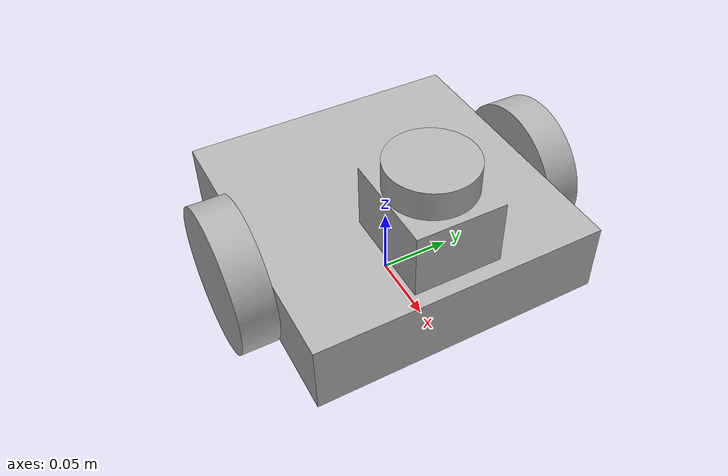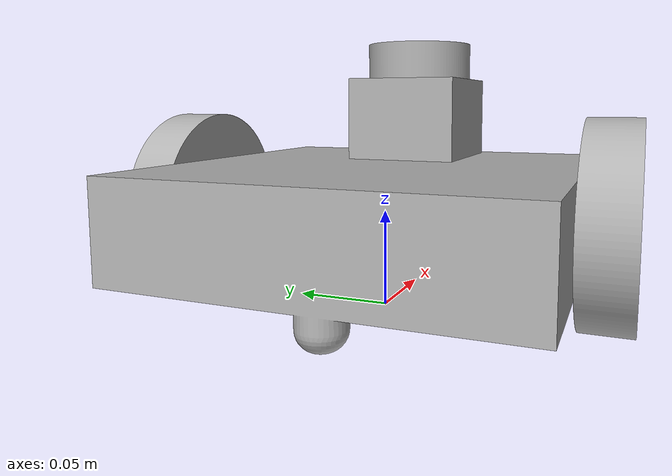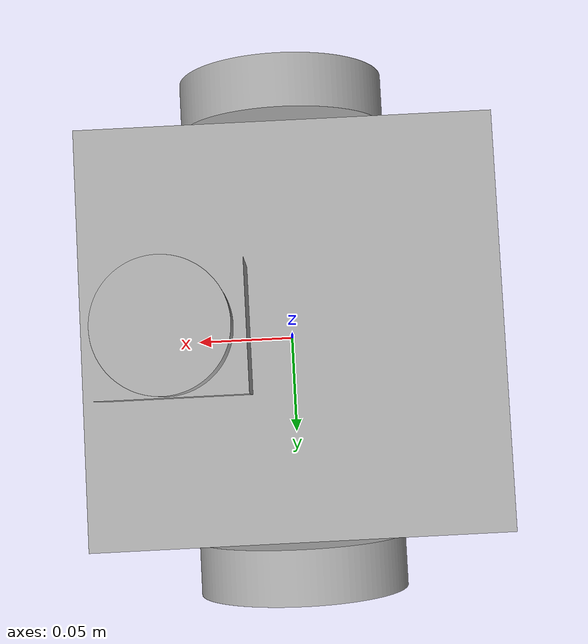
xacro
<?xml version="1.0" ?>
<robot name="Rosbot" xmlns:xacro="http://www.ros.org/wiki/xacro">

<xacro:include filename="$(find Rosbot_description)/urdf/materials.xacro" />
<xacro:include filename="$(find Rosbot_description)/urdf/Rosbot.ros2control" />
<xacro:include filename="$(find Rosbot_description)/urdf/Rosbot.gazebo" />
<link name="base_link">
  <inertial>
    <origin xyz="0.004711972385011227 1.4215078973805006e-06 0.05375741183973183" rpy="0 0 0"/>
    <mass value="2.34056579648116"/>
    <inertia ixx="0.008048" iyy="0.008737" izz="0.014943" ixy="-0.0" iyz="0.0" ixz="-0.000482"/>
  </inertial>
  <visual>
    <origin xyz="0 0 0" rpy="0 0 0"/>
    <geometry>
      <mesh filename="file://$(find Rosbot_description)/meshes/base_link.stl" scale="0.001 0.001 0.001"/>
    </geometry>
    <material name="silver"/>
  </visual>
  <collision>
    <origin xyz="0 0 0" rpy="0 0 0"/>
    <geometry>
      <mesh filename="file://$(find Rosbot_description)/meshes/base_link.stl" scale="0.001 0.001 0.001"/>
    </geometry>
  </collision>
</link>

<link name="left_wheel_1">
  <inertial>
    <origin xyz="6.789013795582832e-16 -0.012499999999999997 -1.3877787807814457e-15" rpy="0 0 0"/>
    <mass value="0.1826050729899067"/>
    <inertia ixx="0.000124" iyy="0.000228" izz="0.000124" ixy="0.0" iyz="0.0" ixz="0.0"/>
  </inertial>
  <visual>
    <origin xyz="-0.0 0.1 -0.05" rpy="0 0 0"/>
    <geometry>
      <mesh filename="file://$(find Rosbot_description)/meshes/left_wheel_1.stl" scale="0.001 0.001 0.001"/>
    </geometry>
    <material name="silver"/>
  </visual>
  <collision>
    <origin xyz="-0.0 0.1 -0.05" rpy="0 0 0"/>
    <geometry>
      <mesh filename="file://$(find Rosbot_description)/meshes/left_wheel_1.stl" scale="0.001 0.001 0.001"/>
    </geometry>
  </collision>
</link>

<link name="right_wheel_1">
  <inertial>
    <origin xyz="-1.865174681370263e-16 0.012499999999999997 -2.1510571102112408e-16" rpy="0 0 0"/>
    <mass value="0.1826050729899067"/>
    <inertia ixx="0.000124" iyy="0.000228" izz="0.000124" ixy="-0.0" iyz="0.0" ixz="-0.0"/>
  </inertial>
  <visual>
    <origin xyz="-0.0 -0.1 -0.05" rpy="0 0 0"/>
    <geometry>
      <mesh filename="file://$(find Rosbot_description)/meshes/right_wheel_1.stl" scale="0.001 0.001 0.001"/>
    </geometry>
    <material name="silver"/>
  </visual>
  <collision>
    <origin xyz="-0.0 -0.1 -0.05" rpy="0 0 0"/>
    <geometry>
      <mesh filename="file://$(find Rosbot_description)/meshes/right_wheel_1.stl" scale="0.001 0.001 0.001"/>
    </geometry>
  </collision>
</link>

<link name="lidar_1">
  <inertial>
    <origin xyz="0.0 0.0 0.009999999999999981" rpy="0 0 0"/>
    <mass value="0.0754575997873079"/>
    <inertia ixx="1.9e-05" iyy="1.9e-05" izz="3.3e-05" ixy="0.0" iyz="0.0" ixz="0.0"/>
  </inertial>
  <visual>
    <origin xyz="-0.055 0.0 -0.12" rpy="0 0 0"/>
    <geometry>
      <mesh filename="file://$(find Rosbot_description)/meshes/lidar_1.stl" scale="0.001 0.001 0.001"/>
    </geometry>
    <material name="silver"/>
  </visual>
  <collision>
    <origin xyz="-0.055 0.0 -0.12" rpy="0 0 0"/>
    <geometry>
      <mesh filename="file://$(find Rosbot_description)/meshes/lidar_1.stl" scale="0.001 0.001 0.001"/>
    </geometry>
  </collision>
</link>

<joint name="left_wheel_joint" type="continuous">
  <origin xyz="0.0 -0.1 0.05" rpy="0 0 0"/>
  <parent link="base_link"/>
  <child link="left_wheel_1"/>
  <axis xyz="0.0 1.0 0.0"/>
</joint>

<joint name="right_wheel_joint" type="continuous">
  <origin xyz="0.0 0.1 0.05" rpy="0 0 0"/>
  <parent link="base_link"/>
  <child link="right_wheel_1"/>
  <axis xyz="0.0 1.0 0.0"/>
</joint>

<joint name="lidar_joint" type="fixed">
  <origin xyz="0.055 0.0 0.12" rpy="0 0 0"/>
  <parent link="base_link"/>
  <child link="lidar_1"/>
</joint>

</robot>

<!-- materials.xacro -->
<robot name="Rosbot" xmlns:xacro="http://www.ros.org/wiki/xacro" >

<material name="silver">
  <color rgba="0.700 0.700 0.700 1.000"/>
</material>

</robot>

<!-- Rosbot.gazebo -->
<robot name="rosbot" xmlns:xacro="http://www.ros.org/wiki/xacro" >

<xacro:property name="body_color" value="Gazebo/Silver" />

<gazebo reference="base_link">
  <material>${body_color}</material>
  <mu1>1500</mu1>
  <mu2>1500</mu2>
  <self_collide>true</self_collide>
  <gravity>true</gravity>
</gazebo>

<gazebo reference="right_wheel_1">
  <material>${body_color}</material>
  <mu1>1500</mu1>
  <mu2>1500</mu2>
  <self_collide>true</self_collide>
</gazebo>

<gazebo reference="left_wheel_1">
  <material>${body_color}</material>
  <mu1>1500</mu1>
  <mu2>1500</mu2>
  <self_collide>true</self_collide>
</gazebo>

<gazebo reference="lidar_1">
  <material>${body_color}</material>
  <mu1>0.2</mu1>
  <mu2>0.2</mu2>
  <self_collide>true</self_collide>
</gazebo>

  <gazebo>

        <plugin filename="gz-sim-sensors-system" name="gz::sim::systems::Sensors">
            <render_engine>ogre2</render_engine>
        </plugin>

        <plugin filename="gz-sim-joint-state-publisher-system" name="gz::sim::systems::JointStatePublisher">
        <topic>/joint_states</topic>
        </plugin>

      <plugin
        filename="gz-sim-diff-drive-system"
        name="gz::sim::systems::DiffDrive">
        <left_joint>left_wheel_joint</left_joint>
        <right_joint>right_wheel_joint</right_joint>
        <wheel_separation>0.2</wheel_separation>
        <wheel_radius>0.05</wheel_radius>
        <odom_publish_frequency>30</odom_publish_frequency>
        <topic>/cmd_vel</topic>
        <tf_topic>/tf</tf_topic>
        <frame_id>odom</frame_id>
        <odom_topic>odom</odom_topic>
        <child_frame_id>base_link</child_frame_id>

</plugin>
</gazebo>

<gazebo reference="lidar_1">
        <sensor name='gpu_lidar' type='gpu_lidar'>
          <pose>0 0 0 0 0 0</pose>
          <topic>scan</topic>
          <gz_frame_id>lidar_1</gz_frame_id>
          <update_rate>10</update_rate>
          <lidar>
            <scan>
              <horizontal>
                <samples>640</samples>
                <resolution>1</resolution>
                <min_angle>-1.396263</min_angle>
                <max_angle>1.396263</max_angle>
              </horizontal>
              <vertical>
                <samples>1</samples>
                <resolution>1</resolution>
                <min_angle>0.0</min_angle>
                <max_angle>0.0</max_angle>
              </vertical>
            </scan>
            <range>
              <min>0.08</min>
              <max>10.0</max>
              <resolution>0.01</resolution>
            </range>
          </lidar>
          <visualize>true</visualize>
        </sensor>
 </gazebo>

</robot>
